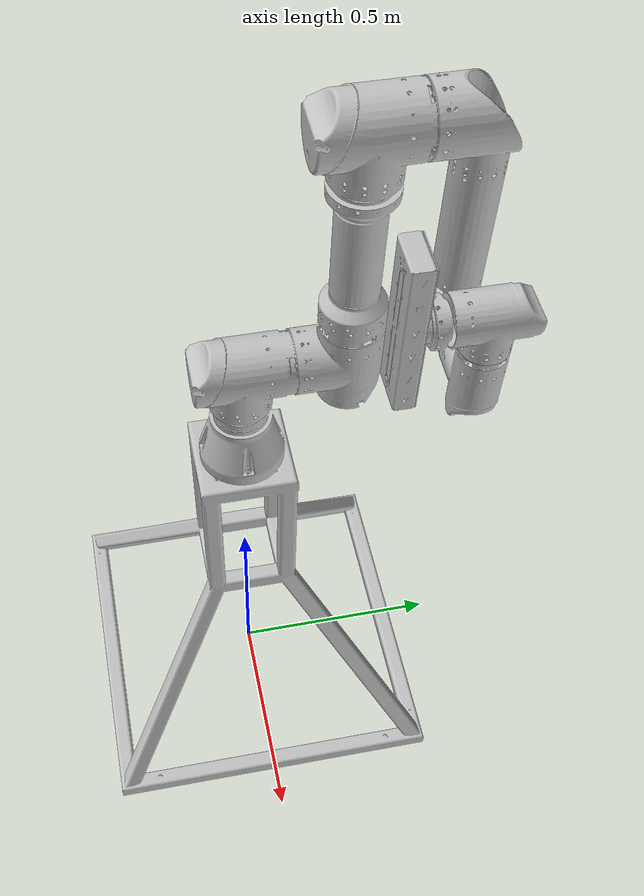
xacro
<?xml version="1.0"?>
<robot xmlns:xacro="http://www.ros.org/wiki/xacro" name="robotic_arm">
    <xacro:arg name="initial_positions_file" default="initial_positions.yaml" />

    <!-- Import robotic_arm urdf file -->

    <!-- Include Gazebo Parameters -->
    <xacro:include filename="$(find robotic_arm_v3)/config/robotic_arm_gazebo.xacro" />

    <!-- Import control_xacro -->
    <xacro:include filename="$(find robotic_arm_v3)/config/robotic_arm.ros2_control.xacro" />

    <xacro:robotic_arm_ros2_control name="RobotSystem" initial_positions_file="$(arg initial_positions_file)"/>
    <link name="world"/>

    <link name="J1_URDFT">

<inertial>
            <origin xyz="-9.51010276904022E-07 -1.53072999249457E-07 0.474884961623029" rpy="0 0 0" />
            <mass value="16.0021127502887" />
            <inertia ixx="2.9242612302543" ixy="1.46379821394654E-07" ixz="5.94678992686232E-06" iyy="2.92410481812926" iyz="9.74323254510773E-07" izz="1.25964730582592" />
        </inertial>

        <visual>
            <origin xyz="0 0 0" rpy="0 0 0" />
            <geometry>
                <mesh filename="package://robotic_arm_v3/meshes/J1_URDFT.STL" />
            </geometry>
            <material name="">
                <color rgba="0.752941176470588 0.752941176470588 0.752941176470588 1" />
            </material>
        </visual>
        <collision>
            <origin xyz="0 0 0" rpy="0 0 0" />
            <geometry>
                <mesh filename="package://robotic_arm_v3/meshes/J1_URDFT.STL" />
            </geometry>
        </collision>
    </link>
    <!-- Adding virtual joint -->
    <joint name="virtual_joint" type="fixed">
        <parent link="world"/>
        <child link="J1_URDFT"/>
        <origin xyz="0 0 0" rpy="0 0 0"/>
    </joint>

    <link name="J2_URDF">

<inertial>
            <origin xyz="2.84638039152322E-06 0.0149402015181785 0.0707255748978278" rpy="0 0 0" />
            <mass value="2.67862162357256" />
            <inertia ixx="0.0121844438830936" ixy="8.76708641059771E-07" ixz="1.43181483553311E-07" iyy="0.00975555398551576" iyz="-0.00160762496329934" izz="0.00931541188269261" />
        </inertial>

        <visual>
            <origin xyz="0 0 0" rpy="0 0 0" />
            <geometry>
                <mesh filename="package://robotic_arm_v3/meshes/J2_URDF.STL" />
            </geometry>
            <material name="">
                <color rgba="0.752941176470588 0.752941176470588 0.752941176470588 1" />
            </material>
        </visual>
        <collision>
            <origin xyz="0 0 0" rpy="0 0 0" />
            <geometry>
                <mesh filename="package://robotic_arm_v3/meshes/J2_URDF.STL" />
            </geometry>
        </collision>
    </link>

    <joint name="LINK_2" type="revolute">
        <origin xyz="0 0 1.0039" rpy="0 0 0" />
        <parent link="J1_URDFT" />
        <child link="J2_URDF" />
        <axis xyz="0 0 -1" />
        <limit lower="-3.141592653589793" upper="3.141592653589793" effort="10.0" velocity="0.5" />
    </joint>
    <link name="J3_URDF">

<inertial>
            <origin xyz="2.52249119894297E-05 0.121694392082872 0.257116677779387" rpy="0 0 0" />
            <mass value="6.30292000944053" />
            <inertia ixx="0.2906829967115" ixy="-3.11904569219061E-06" ixz="5.16252715819705E-05" iyy="0.281574247050272" iyz="-0.0313879228315103" izz="0.0258948092697482" />
        </inertial>

        <visual>
            <origin xyz="0 0 0" rpy="0 0 0" />
            <geometry>
                <mesh filename="package://robotic_arm_v3/meshes/J3_URDF.STL" />
            </geometry>
            <material name="">
                <color rgba="0.752941176470588 0.752941176470588 0.752941176470588 1" />
            </material>
        </visual>
        <collision>
            <origin xyz="0 0 0" rpy="0 0 0" />
            <geometry>
                <mesh filename="package://robotic_arm_v3/meshes/J3_URDF.STL" />
            </geometry>
        </collision>
    </link>
    <joint name="LINK_3" type="revolute">
        <origin xyz="0 0.094488086480439 0.1071" rpy="0 0 0" />
        <parent link="J2_URDF" />
        <child link="J3_URDF" />
        <axis xyz="0 -1 0" />
        <limit lower="-3.141592653589793" upper="3.141592653589793" effort="10.0" velocity="0.5" />
    </joint>
    <link name="J4_URDF">

<inertial>
            <origin xyz="-0.000734923366908887 0.088602408177882 -0.201585775441392" rpy="0 0 0" />
            <mass value="3.0270994482729" />
            <inertia ixx="0.0999858501424256" ixy="4.89230528425054E-05" ixz="-0.000489681682617819" iyy="0.0980923489376713" iyz="0.0134457306323948" izz="0.0106261253879696" />
        </inertial>

        <visual>
            <origin xyz="0 0 0" rpy="0 0 0" />
            <geometry>
                <mesh filename="package://robotic_arm_v3/meshes/J4_URDF.STL" />
            </geometry>
            <material name="">
                <color rgba="0.752941176470588 0.752941176470588 0.752941176470588 1" />
            </material>
        </visual>
        <collision>
            <origin xyz="0 0 0" rpy="0 0 0" />
            <geometry>
                <mesh filename="package://robotic_arm_v3/meshes/J4_URDF.STL" />
            </geometry>
        </collision>
    </link>
    <joint name="LINK_4" type="revolute">
        <origin xyz="0 0.212100000011973 0.527588086492413" rpy="0 0 0" />
        <parent link="J3_URDF" />
        <child link="J4_URDF" />
        <axis xyz="0 -1 0" />
        <limit lower="-3.141592653589793" upper="3.141592653589793" effort="10.0" velocity="0.5" />
    </joint>
    <link name="J5_URDF">

<inertial>
            <origin xyz="0.0693315196897935 7.79241648984907E-07 -0.00267606582802044" rpy="0 0 0" />
            <mass value="0.879021938382621" />
            <inertia ixx="0.00241594942427443" ixy="5.92211749149104E-09" ixz="2.29885097885558E-05" iyy="0.00293577183687756" iyz="-6.56772807651748E-06" izz="0.00207334730749471" />
        </inertial>

        <visual>
            <origin xyz="0 0 0" rpy="0 0 0" />
            <geometry>
                <mesh filename="package://robotic_arm_v3/meshes/J5_URDF.STL" />
            </geometry>
            <material name="">
                <color rgba="0.752941176470588 0.752941176470588 0.752941176470588 1" />
            </material>
        </visual>
        <collision>
            <origin xyz="0 0 0" rpy="0 0 0" />
            <geometry>
                <mesh filename="package://robotic_arm_v3/meshes/J5_URDF.STL" />
            </geometry>
        </collision>
    </link>
    <joint name="LINK_5" type="revolute">
        <origin xyz="0.0775000001931097 0.110525577827234 -0.4440999999663" rpy="0 0 0" />
        <parent link="J4_URDF" />
        <child link="J5_URDF" />
        <axis xyz="-1 0 0" />
        <limit lower="-3.141592653589793" upper="3.141592653589793" effort="10.0" velocity="0.5" />
    </joint>
    <link name="J6_URDF">

<inertial>
            <origin xyz="-7.32383642787493E-07 0.00762909130620515 0.0613533493794111" rpy="0 0 0" />
            <mass value="0.943215160079131" />
            <inertia ixx="0.00311275936334555" ixy="7.66219016125345E-06" ixz="-7.59564510585188E-09" iyy="0.00221366277735117" iyz="-0.000127469800134768" izz="0.00253493475386834" />
        </inertial>

        <visual>
            <origin xyz="0 0 0" rpy="0 0 0" />
            <geometry>
                <mesh filename="package://robotic_arm_v3/meshes/J6_URDF.STL" />
            </geometry>
            <material name="">
                <color rgba="0.752941176470588 0.752941176470588 0.752941176470588 1" />
            </material>
        </visual>
        <collision>
            <origin xyz="0 0 0" rpy="0 0 0" />
            <geometry>
                <mesh filename="package://robotic_arm_v3/meshes/J6_URDF.STL" />
            </geometry>
        </collision>
    </link>
    <joint name="LINK_6" type="revolute">
        <origin xyz="0.1006 0 0.0775" rpy="0 0 0" />
        <parent link="J5_URDF" />
        <child link="J6_URDF" />
        <axis xyz="0 0 -1" />
        <limit lower="-3.141592653589793" upper="3.141592653589793" effort="10.0" velocity="0.5" />
    </joint>
    <link name="END_EFFECTOR">

<inertial>
            <origin xyz="0.000107270621524963 -0.0499125792607608 -5.04443527882259E-05" rpy="0 0 0" />
            <mass value="0.861222398934799" />
            <inertia ixx="0.00537698222567909" ixy="1.16166814308983E-06" ixz="-3.49391843135193E-08" iyy="0.00524609925709774" iyz="-8.22997774991589E-08" izz="0.0012395566886916" />
        </inertial>

        <visual>
            <origin xyz="0 0 0" rpy="0 0 0" />
            <geometry>
                <mesh filename="package://robotic_arm_v3/meshes/END_EFFECTOR.STL" />
            </geometry>
            <material name="">
                <color rgba="0.752941176470588 0.752941176470588 0.752941176470588 1" />
            </material>
        </visual>
        <collision>
            <origin xyz="0 0 0" rpy="0 0 0" />
            <geometry>
                <mesh filename="package://robotic_arm_v3/meshes/END_EFFECTOR.STL" />
            </geometry>
        </collision>
    </link>
    <joint name="1Feet" type="revolute">
        <origin xyz="0 -0.0775 0.0906" rpy="0 0 0" />
        <parent link="J6_URDF" />
        <child link="END_EFFECTOR" />
        <axis xyz="0 1 0" />
        <limit lower="-3.141592653589793" upper="3.141592653589793" effort="10.0" velocity="0.5" />
    </joint>

    <transmission name="trans_LINK_2">
        <plugin>transmission_interface/SimpleTransmission</plugin>
        <actuator name="LINK_2_motor" role="actuator1"/>
        <joint name="LINK_2"    role="joint1">
            <mechanical_reduction>1.0</mechanical_reduction>
        </joint>
    </transmission>
    <transmission name="trans_LINK_3">
        <plugin>transmission_interface/SimpleTransmission</plugin>
        <actuator name="LINK_3_motor" role="actuator1"/>
        <joint name="LINK_3"    role="joint1">
            <mechanical_reduction>1.0</mechanical_reduction>
        </joint>
    </transmission>
    <transmission name="trans_LINK_4">
        <plugin>transmission_interface/SimpleTransmission</plugin>
        <actuator name="LINK_4_motor" role="actuator1"/>
        <joint name="LINK_4"    role="joint1">
            <mechanical_reduction>1.0</mechanical_reduction>
        </joint>
    </transmission>
    <transmission name="trans_LINK_5">
        <plugin>transmission_interface/SimpleTransmission</plugin>
        <actuator name="LINK_5_motor" role="actuator1"/>
        <joint name="LINK_5"    role="joint1">
            <mechanical_reduction>1.0</mechanical_reduction>
        </joint>
    </transmission>
    <transmission name="trans_LINK_6">
        <plugin>transmission_interface/SimpleTransmission</plugin>
        <actuator name="LINK_6_motor" role="actuator1"/>
        <joint name="LINK_6"    role="joint1">
            <mechanical_reduction>1.0</mechanical_reduction>
        </joint>
    </transmission>
    <transmission name="trans_1Feet">
        <plugin>transmission_interface/SimpleTransmission</plugin>
        <actuator name="1Feet_motor" role="actuator1"/>
        <joint name="1Feet"    role="joint1">
            <mechanical_reduction>1.0</mechanical_reduction>
        </joint>
    </transmission>

</robot>
